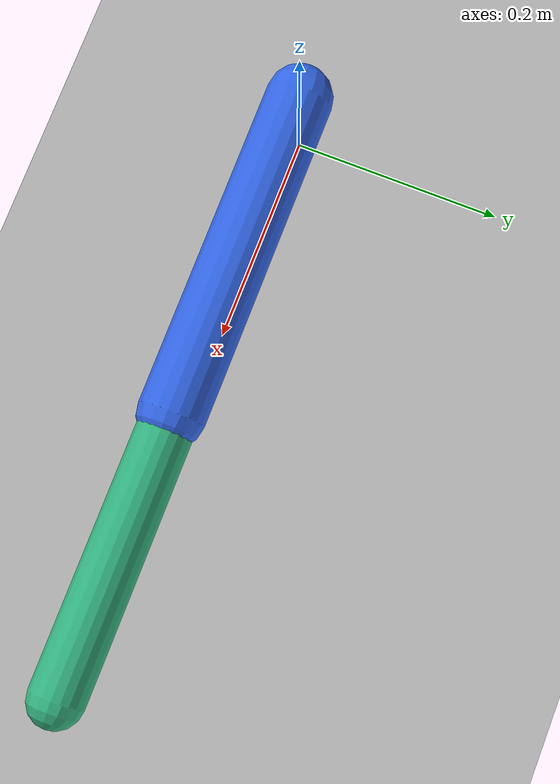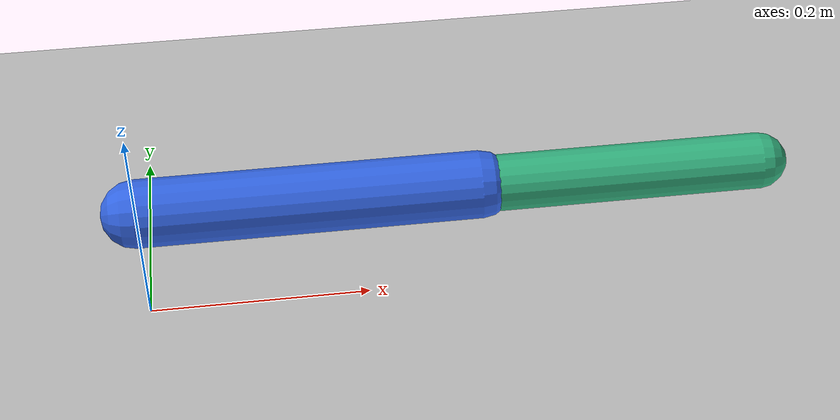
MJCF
<mujoco model="phiagent_tabletop_two_hinge">
  <option timestep="0.002" gravity="0 0 -9.81"/>
  <worldbody>
    <light pos="0 0 2" dir="0 0 -1"/>
    <geom name="table" type="plane" size="1 1 0.05" rgba="0.72 0.72 0.72 1"/>
    <body name="link1_body" pos="0 0 0.12">
      <joint name="joint1" type="hinge" axis="0 0 1" range="-90 90"/>
      <geom name="link1" type="capsule" fromto="0 0 0 0.3 0 0"
            size="0.03" mass="1" rgba="0.2 0.4 0.9 1"/>
      <body name="link2_body" pos="0.3 0 0">
        <joint name="joint2" type="hinge" axis="0 0 1" range="-90 90"/>
        <geom name="link2" type="capsule" fromto="0 0 0 0.25 0 0"
              size="0.025" mass="0.7" rgba="0.2 0.7 0.5 1"/>
      </body>
    </body>
  </worldbody>
  <actuator>
    <position name="joint1_position" joint="joint1" kp="100"/>
    <position name="joint2_position" joint="joint2" kp="100"/>
  </actuator>
</mujoco>
